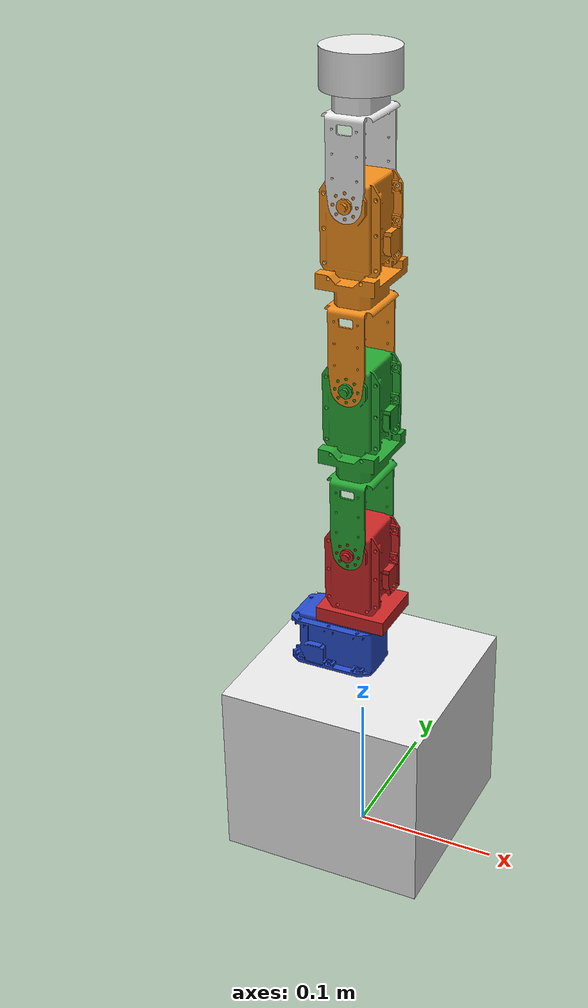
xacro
<?xml version="1.0"?>

<robot xmlns:xacro="http://www.ros.org/wiki/xacro" name="robot">

 <!-- include materials /-->
 <xacro:include filename="$(find robot_description)/model/materials.xacro" />

  <!-- World -->
  <link name="world_link">
  </link>

  <!-- World fixed joint-->
  <joint name="world_fixed_joint" type="fixed">
    <origin xyz="0 0 0" rpy="0 0 0"/>
    <parent link="world_link"/>
    <child link="base_link"/>
  </joint>

  <link name="base_link">

    <inertial>
        <mass value="1.488"/>
        <origin xyz="0 0 0.068"  />
        <inertia ixx="0.0047" ixy="0.0" ixz="0.0047" iyy="0." iyz="0.0" izz="0.053"/>
    </inertial>

    <collision>
      <origin xyz="0 0 0.008" rpy="0 0 0"/>
      <geometry>
        <mesh filename="package://robot_description/new_meshes/base.stl" scale="0.001 0.001 0.001"/>
        <!--box size="0.146 0.146 0.129"/ -->
      </geometry>
    </collision>

    <visual>
      <origin xyz="0 0 0.008" rpy="0 0 0"/>
      <geometry>
        <mesh filename="package://robot_description/new_meshes/base.stl" scale="0.001 0.001 0.001"/>
        <!--box size="0.146 0.146 0.129"/ -->
      </geometry>
      <material name="white"/>
    </visual>

  </link>

  <!-- Joint BaseToJoint1 -->
	<joint name="link1_fixed_joint" type="fixed">
		<parent link="base_link"/>
		<child link="link_1"/>
		<origin xyz="0 0 0.137" rpy="0 0 0"/>
	</joint>

	<!-- link_1 -->
  <link name="link_1">

     <inertial>
        <mass value="0.165"/>
        <origin xyz="0 0.024 0.0205"  />
        <inertia ixx="0.00007" ixy="0.0" ixz="0.0" iyy="0.00005" iyz="0.0" izz="0.0001"/>
    </inertial>

		<visual>
			<origin xyz="0 0 0.0" rpy="0 0 0"/>
			<geometry>
				<mesh filename="package://robot_description/new_meshes/mx-64tobase.stl" scale="0.01 0.01 0.01"/>
			</geometry>
			<material name="blue"/>
		</visual>

		<collision>
			<origin xyz="0 0 0.0" rpy="0 0 0"/>
			<geometry>
				<mesh filename="package://robot_description/new_meshes/mx-64tobase.stl" scale="0.01 0.01 0.01"/>
			</geometry>
		</collision>
	</link>

  <!-- joint1 -->
  <joint name="joint1" type="revolute">
    <parent link="link_1"/>
    <child link="link_2"/>
    <origin xyz="0 0.0 0.044" rpy="0 0 0"/>
    <axis xyz="0 0 1"/>
    <limit velocity="4.8" effort="1" lower="-3.14" upper="3.14" />
  </joint>

  <!-- link_2 -->
  <link name="link_2">

    <inertial>
        <mass value="0.165"/>
        <origin xyz="0 0.0 -0.0175"  />
        <inertia ixx="0.00007" ixy="0.0" ixz="0.0" iyy="0.0001" iyz="0.0" izz="0.00005"/>
    </inertial>

    <visual>
      <origin xyz="0 0 0.0" rpy="0 0 0"/>
      <geometry>
        <mesh filename="package://robot_description/new_meshes/mx-64second.stl" scale="0.01 0.01 0.01"/>
      </geometry>
      <material name="red"/>
    </visual>

    <collision>
      <origin xyz="0 0 0.0" rpy="0 0 0"/>
      <geometry>
        <mesh filename="package://robot_description/new_meshes/mx-64second.stl" scale="0.01 0.01 0.01"/>
      </geometry>
    </collision>
  </link>

  <!-- joint2 -->
  <joint name="joint2" type="revolute">
    <parent link="link_2"/>
    <child link="link_3"/>
    <origin xyz="0 0.0 0.058" rpy="0 0 0"/>
    <axis xyz="0 1 0"/>
    <limit velocity="4.8" effort="1" lower="-2.2" upper="2.2" />
  </joint>

  <!-- link_3 -->
  <link name="link_3">

    <inertial>
        <mass value="0.215"/>
        <origin xyz="0 0.0 0.100"  />
        <inertia ixx="0.00004" ixy="0.0" ixz="0.0" iyy="0.00004" iyz="0.0" izz="0.00007"/>
    </inertial>

    <visual>
      <origin xyz="0 0 0" rpy="0 0 0"/>
      <geometry>
        <mesh filename="package://robot_description/meshes/linked_mx_64t.stl" scale="0.01 0.01 0.01"/>
      </geometry>
      <material name="green"/>
    </visual>

    <collision>
      <origin xyz="0 0 0" rpy="0 0 0"/>
      <geometry>
        <mesh filename="package://robot_description/meshes/linked_mx_64t.stl" scale="0.01 0.01 0.01"/>
      </geometry>
    </collision>
  </link>

  <!-- joint3 -->
  <joint name="joint3" type="revolute">
    <parent link="link_3"/>
    <child link="link_4"/>
    <origin xyz="0 0.0 0.12" rpy="0 0 0"/>
    <axis xyz="0 1 0"/>
    <limit velocity="4.8" effort="1" lower="-2.1" upper="2.1" />
  </joint>

  <!-- link_4 -->
  <link name="link_4">

    <inertial>
        <mass value="0.215"/>
        <origin xyz="0 0.0 0.100"  />
        <inertia ixx="0.00004" ixy="0.0" ixz="0.0" iyy="0.00004" iyz="0.0" izz="0.00007"/>
    </inertial>

    <visual>
      <origin xyz="0 0 0" rpy="0 0 0"/>
      <geometry>
        <mesh filename="package://robot_description/meshes/linked_mx_64t.stl" scale="0.01 0.01 0.01"/>
      </geometry>
      <material name="orange"/>
    </visual>

    <collision>
      <origin xyz="0 0 0" rpy="0 0 0"/>
      <geometry>
        <mesh filename="package://robot_description/meshes/linked_mx_64t.stl" scale="0.01 0.01 0.01"/>
      </geometry>
    </collision>
  </link>

  <!-- joint4 -->
  <joint name="joint4" type="revolute">
    <parent link="link_4"/>
    <child link="endeffector"/>
    <origin xyz="0 0 0.12" rpy="0 0 0"/>
    <axis xyz="0 1 0"/>
    <limit effort="4.8" lower="-2.1" upper="2.1" velocity="10"/>
  </joint>

  <!-- EndEffector -->
  <link name="endeffector">
    <collision>
      <origin xyz="0 0 0.0" rpy="0 0 0"/>
      <geometry>
        <mesh filename="package://robot_description/new_meshes/endeffector.stl" scale="0.001 0.001 0.001"/>
      </geometry>
    </collision>

    <visual>
      <origin xyz="0 0 0.0" rpy="0 0 0"/>
      <geometry>
        <mesh filename="package://robot_description/new_meshes/endeffector.stl" scale="0.001 0.001 0.001"/>
      </geometry>
      <material name="white"/>
    </visual>

    <inertial>
      <origin xyz="0 0 0.0" rpy="0 0 0"/>
      <mass value="0.050"/>
      <inertia ixx="1.0" ixy="0.0" ixz="0.0" iyy="1.0" iyz="0.0" izz="1.0"/>
    </inertial>
  </link>

  <!-- joint5 -->
  <joint name="joint5" type="fixed">
    <parent link="endeffector"/>
    <child link="link_grinder"/>
    <origin xyz="0 0 0.065" rpy="0 0 0"/>
    <axis xyz="0 0 1"/>
  </joint>

  <link name="link_grinder">
    <collision>
      <origin xyz="0 0 0.0" rpy="0 0 0"/>
      <geometry>
        <mesh filename="package://robot_description/new_meshes/grinder.stl" scale="0.001 0.001 0.001"/>
      </geometry>
    </collision>

    <visual>
      <origin xyz="0 0 0.0" rpy="0 0 0"/>
      <geometry>
         <mesh filename="package://robot_description/new_meshes/grinder.stl" scale="0.001 0.001 0.001"/>
      </geometry>
      <material name="white"/>
    </visual>

    <inertial>
      <origin xyz="0 0 0.0" rpy="0 0 0"/>
      <mass value="0.050"/>
      <inertia ixx="1.0" ixy="0.0" ixz="0.0" iyy="1.0" iyz="0.0" izz="1.0"/>
    </inertial>
  </link>

   </robot>
